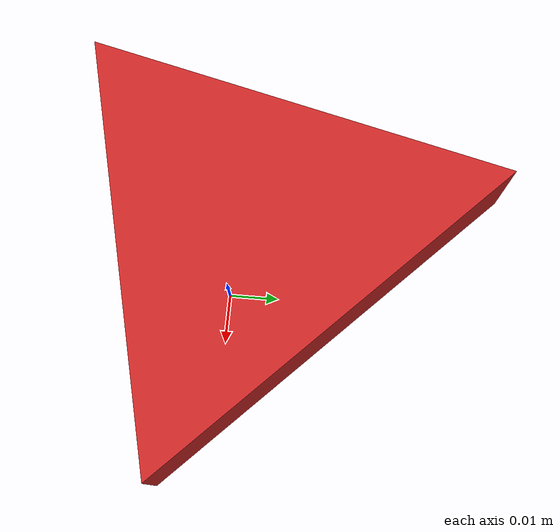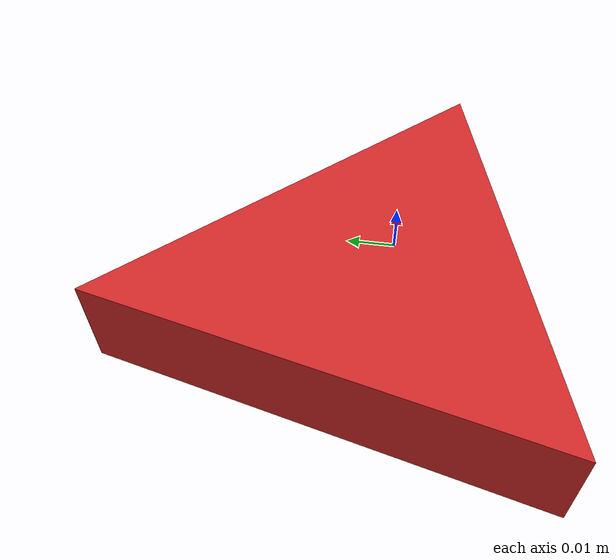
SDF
<?xml version="1.0" ?>
<sdf version="1.5">
  <model name='triangle'>
    <link name='link'>
      <collision name='collision'>
        <pose frame=''>0 0 0 1.570796327 0 0</pose>
        <geometry>
          <mesh>
           <uri>model://triangle/triangle.obj</uri>
          </mesh>
        </geometry>
        <surface>
          <contact>
             <collide_bitmask>0xffff</collide_bitmask>
          </contact>
          <friction>
            <ode>
              <mu>100</mu>
              <mu2>50</mu2>
            </ode>
          </friction>
        </surface>
      </collision>
      <visual name="triangle_visual">
        <pose frame=''>0 0 0 1.570796327 0 0</pose>
        <geometry>
         <mesh>
           <uri>model://triangle/triangle.obj</uri>
         </mesh>
        </geometry>
        <material>
          <script>
            <uri>file://media/materials/scripts/gazebo.material</uri>
            <name>Gazebo/Red</name>
          </script>
        </material>
      </visual>
    </link>
  </model>
</sdf>
